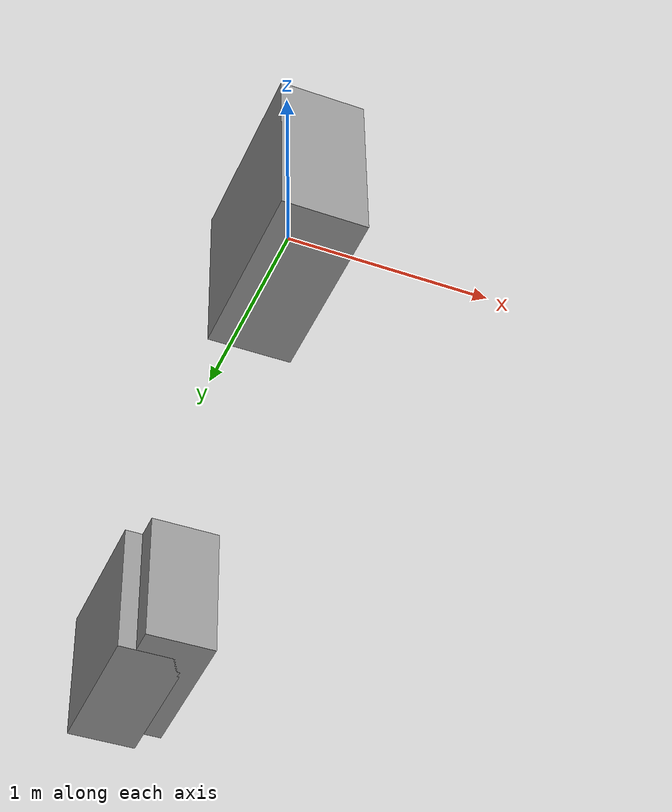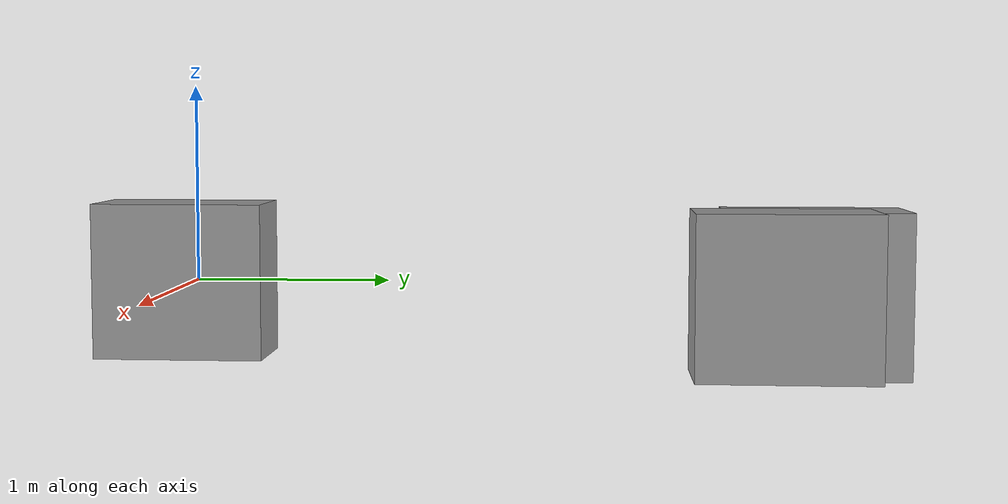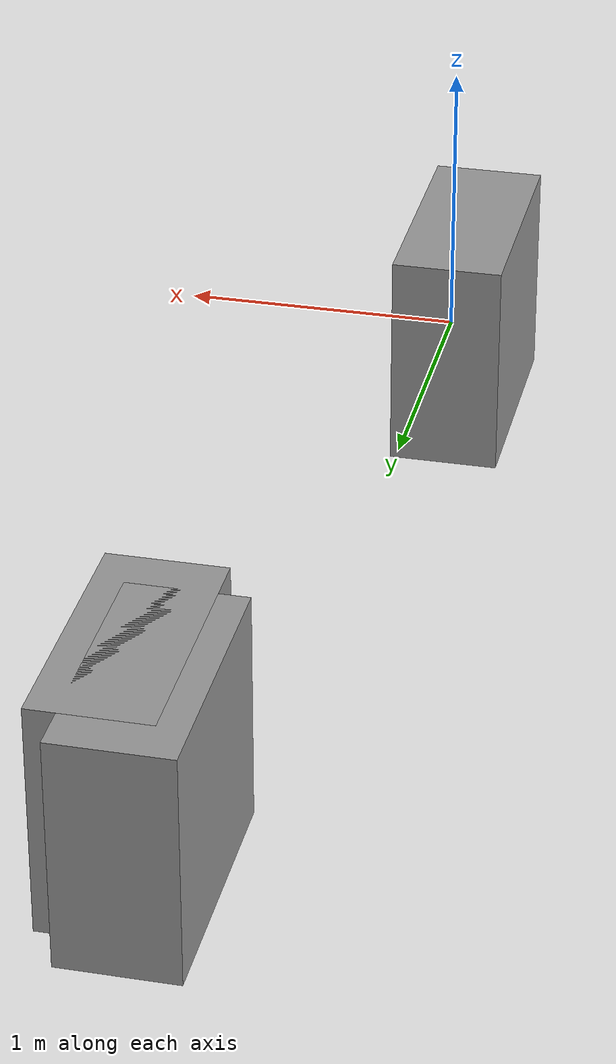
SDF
<?xml version='1.0'?>
<sdf version='1.6'>
  <model name='obstacle_sac'>
    <link name='link'>
      <inertial>
        <mass>2.19551</mass>
        <inertia>
          <ixx>0.258199</ixx>
          <ixy>0</ixy>
          <ixz>0</ixz>
          <iyy>0.146367</iyy>
          <iyz>0</iyz>
          <izz>0.170378</izz>
        </inertia>
        <pose frame=''>0 0 0 0 -0 0</pose>
      </inertial>
      <self_collide>0</self_collide>
      <enable_wind>0</enable_wind>
      <kinematic>0</kinematic>
      <pose frame=''>-0.042732 -0.078373 0 0 -0 0</pose>
      <gravity>1</gravity>
      <visual name='visual'>
        <geometry>
          <box>
            <size>0.4 0.878202 0.8</size>
          </box>
        </geometry>
        <material>
          <script>
            <name>Gazebo/Grey</name>
            <uri>file://media/materials/scripts/gazebo.material</uri>
          </script>
          <shader type='vertex'>
            <normal_map>__default__</normal_map>
          </shader>
          <ambient>0.3 0.3 0.3 1</ambient>
          <diffuse>0.7 0.7 0.7 1</diffuse>
          <specular>0.01 0.01 0.01 1</specular>
          <emissive>0 0 0 1</emissive>
        </material>
        <pose frame=''>0 0 0 0 -0 0</pose>
        <transparency>0</transparency>
        <cast_shadows>1</cast_shadows>
      </visual>
      <collision name='collision'>
        <laser_retro>0</laser_retro>
        <max_contacts>10</max_contacts>
        <pose frame=''>0 0 0 0 -0 0</pose>
        <geometry>
          <box>
            <size>0.4 0.878202 0.8</size>
          </box>
        </geometry>
        <surface>
          <friction>
            <ode>
              <mu>1</mu>
              <mu2>1</mu2>
              <fdir1>0 0 0</fdir1>
              <slip1>0</slip1>
              <slip2>0</slip2>
            </ode>
            <torsional>
              <coefficient>1</coefficient>
              <patch_radius>0</patch_radius>
              <surface_radius>0</surface_radius>
              <use_patch_radius>1</use_patch_radius>
              <ode>
                <slip>0</slip>
              </ode>
            </torsional>
          </friction>
          <bounce>
            <restitution_coefficient>0</restitution_coefficient>
            <threshold>1e+06</threshold>
          </bounce>
          <contact>
            <collide_without_contact>0</collide_without_contact>
            <collide_without_contact_bitmask>1</collide_without_contact_bitmask>
            <collide_bitmask>1</collide_bitmask>
            <ode>
              <soft_cfm>0</soft_cfm>
              <soft_erp>0.2</soft_erp>
              <kp>1e+13</kp>
              <kd>1</kd>
              <max_vel>0.01</max_vel>
              <min_depth>0</min_depth>
            </ode>
            <bullet>
              <split_impulse>1</split_impulse>
              <split_impulse_penetration_threshold>-0.01</split_impulse_penetration_threshold>
              <soft_cfm>0</soft_cfm>
              <soft_erp>0.2</soft_erp>
              <kp>1e+13</kp>
              <kd>1</kd>
            </bullet>
          </contact>
        </surface>
      </collision>
    </link>
    <link name='link_clone'>
      <inertial>
        <mass>2.19551</mass>
        <inertia>
          <ixx>0.258199</ixx>
          <ixy>0</ixy>
          <ixz>0</ixz>
          <iyy>0.146367</iyy>
          <iyz>0</iyz>
          <izz>0.170378</izz>
        </inertia>
        <pose frame=''>0 0 0 0 -0 0</pose>
      </inertial>
      <self_collide>0</self_collide>
      <enable_wind>0</enable_wind>
      <kinematic>0</kinematic>
      <pose frame=''>0.320827 3.11469 -0 0 -0 0</pose>
      <gravity>1</gravity>
      <visual name='visual'>
        <geometry>
          <box>
            <size>0.4 0.878202 0.8</size>
          </box>
        </geometry>
        <material>
          <script>
            <name>Gazebo/Grey</name>
            <uri>file://media/materials/scripts/gazebo.material</uri>
          </script>
          <shader type='vertex'>
            <normal_map>__default__</normal_map>
          </shader>
          <ambient>0.3 0.3 0.3 1</ambient>
          <diffuse>0.7 0.7 0.7 1</diffuse>
          <specular>0.01 0.01 0.01 1</specular>
          <emissive>0 0 0 1</emissive>
        </material>
        <pose frame=''>0 0 0 0 -0 0</pose>
        <transparency>0</transparency>
        <cast_shadows>1</cast_shadows>
      </visual>
      <collision name='collision'>
        <laser_retro>0</laser_retro>
        <max_contacts>10</max_contacts>
        <pose frame=''>0 0 0 0 -0 0</pose>
        <geometry>
          <box>
            <size>0.4 0.878202 0.8</size>
          </box>
        </geometry>
        <surface>
          <friction>
            <ode>
              <mu>1</mu>
              <mu2>1</mu2>
              <fdir1>0 0 0</fdir1>
              <slip1>0</slip1>
              <slip2>0</slip2>
            </ode>
            <torsional>
              <coefficient>1</coefficient>
              <patch_radius>0</patch_radius>
              <surface_radius>0</surface_radius>
              <use_patch_radius>1</use_patch_radius>
              <ode>
                <slip>0</slip>
              </ode>
            </torsional>
          </friction>
          <bounce>
            <restitution_coefficient>0</restitution_coefficient>
            <threshold>1e+06</threshold>
          </bounce>
          <contact>
            <collide_without_contact>0</collide_without_contact>
            <collide_without_contact_bitmask>1</collide_without_contact_bitmask>
            <collide_bitmask>1</collide_bitmask>
            <ode>
              <soft_cfm>0</soft_cfm>
              <soft_erp>0.2</soft_erp>
              <kp>1e+13</kp>
              <kd>1</kd>
              <max_vel>0.01</max_vel>
              <min_depth>0</min_depth>
            </ode>
            <bullet>
              <split_impulse>1</split_impulse>
              <split_impulse_penetration_threshold>-0.01</split_impulse_penetration_threshold>
              <soft_cfm>0</soft_cfm>
              <soft_erp>0.2</soft_erp>
              <kp>1e+13</kp>
              <kd>1</kd>
            </bullet>
          </contact>
        </surface>
      </collision>
    </link>
    <link name='link_clone_0'>
      <inertial>
        <mass>2.19551</mass>
        <inertia>
          <ixx>0.258199</ixx>
          <ixy>0</ixy>
          <ixz>0</ixz>
          <iyy>0.146367</iyy>
          <iyz>0</iyz>
          <izz>0.170378</izz>
        </inertia>
        <pose frame=''>0 0 0 0 -0 0</pose>
      </inertial>
      <self_collide>0</self_collide>
      <enable_wind>0</enable_wind>
      <kinematic>0</kinematic>
      <pose frame=''>0.423496 2.96276 -0 0 -0 0</pose>
      <gravity>1</gravity>
      <visual name='visual'>
        <geometry>
          <box>
            <size>0.4 0.878202 0.8</size>
          </box>
        </geometry>
        <material>
          <script>
            <name>Gazebo/Grey</name>
            <uri>file://media/materials/scripts/gazebo.material</uri>
          </script>
          <shader type='vertex'>
            <normal_map>__default__</normal_map>
          </shader>
          <ambient>0.3 0.3 0.3 1</ambient>
          <diffuse>0.7 0.7 0.7 1</diffuse>
          <specular>0.01 0.01 0.01 1</specular>
          <emissive>0 0 0 1</emissive>
        </material>
        <pose frame=''>0 0 0 0 -0 0</pose>
        <transparency>0</transparency>
        <cast_shadows>1</cast_shadows>
      </visual>
      <collision name='collision'>
        <laser_retro>0</laser_retro>
        <max_contacts>10</max_contacts>
        <pose frame=''>0 0 0 0 -0 0</pose>
        <geometry>
          <box>
            <size>0.4 0.878202 0.8</size>
          </box>
        </geometry>
        <surface>
          <friction>
            <ode>
              <mu>1</mu>
              <mu2>1</mu2>
              <fdir1>0 0 0</fdir1>
              <slip1>0</slip1>
              <slip2>0</slip2>
            </ode>
            <torsional>
              <coefficient>1</coefficient>
              <patch_radius>0</patch_radius>
              <surface_radius>0</surface_radius>
              <use_patch_radius>1</use_patch_radius>
              <ode>
                <slip>0</slip>
              </ode>
            </torsional>
          </friction>
          <bounce>
            <restitution_coefficient>0</restitution_coefficient>
            <threshold>1e+06</threshold>
          </bounce>
          <contact>
            <collide_without_contact>0</collide_without_contact>
            <collide_without_contact_bitmask>1</collide_without_contact_bitmask>
            <collide_bitmask>1</collide_bitmask>
            <ode>
              <soft_cfm>0</soft_cfm>
              <soft_erp>0.2</soft_erp>
              <kp>1e+13</kp>
              <kd>1</kd>
              <max_vel>0.01</max_vel>
              <min_depth>0</min_depth>
            </ode>
            <bullet>
              <split_impulse>1</split_impulse>
              <split_impulse_penetration_threshold>-0.01</split_impulse_penetration_threshold>
              <soft_cfm>0</soft_cfm>
              <soft_erp>0.2</soft_erp>
              <kp>1e+13</kp>
              <kd>1</kd>
            </bullet>
          </contact>
        </surface>
      </collision>
    </link>
    <static>0</static>
    <allow_auto_disable>1</allow_auto_disable>
  </model>
</sdf>
